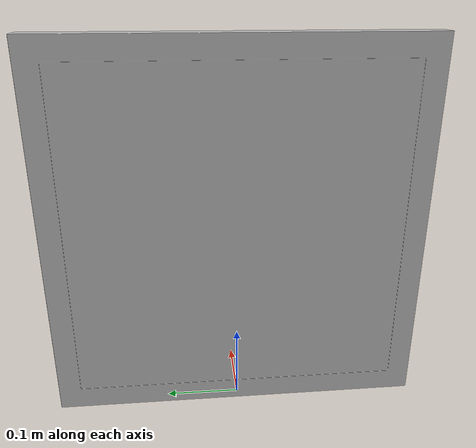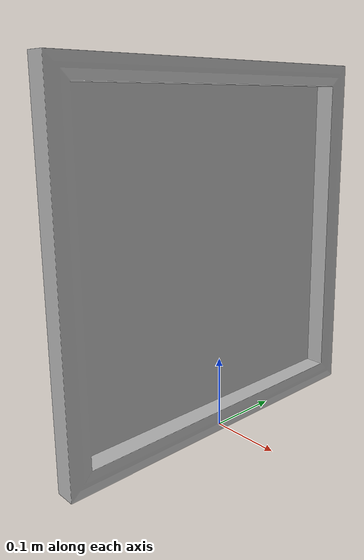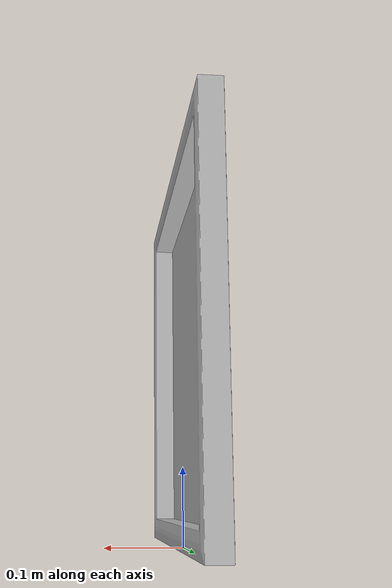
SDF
<?xml version='1.0'?>
<sdf version='1.4'>
  <model name='681'>
    <pose>0 0 0 0 0 0</pose>
    <static>true</static>
    <link name='link'>
      <collision name='collision'>
        <pose>0 0 0 0 0 0</pose>
        <geometry>
          <box>
            <size>0.03 0.499832 2</size>
          </box>
        </geometry>
      </collision>
      <visual name='visual'>
        <pose>0 0 0 0 0 0</pose>
        <geometry>
          <mesh><uri>model://681/681.dae</uri></mesh>
        </geometry>
      </visual>
    </link>
  </model>
</sdf>
